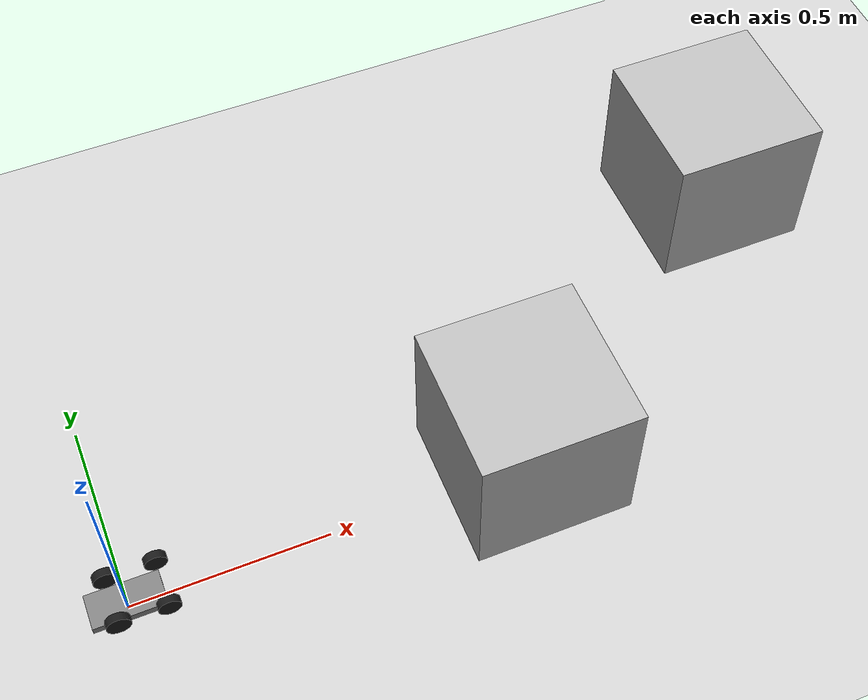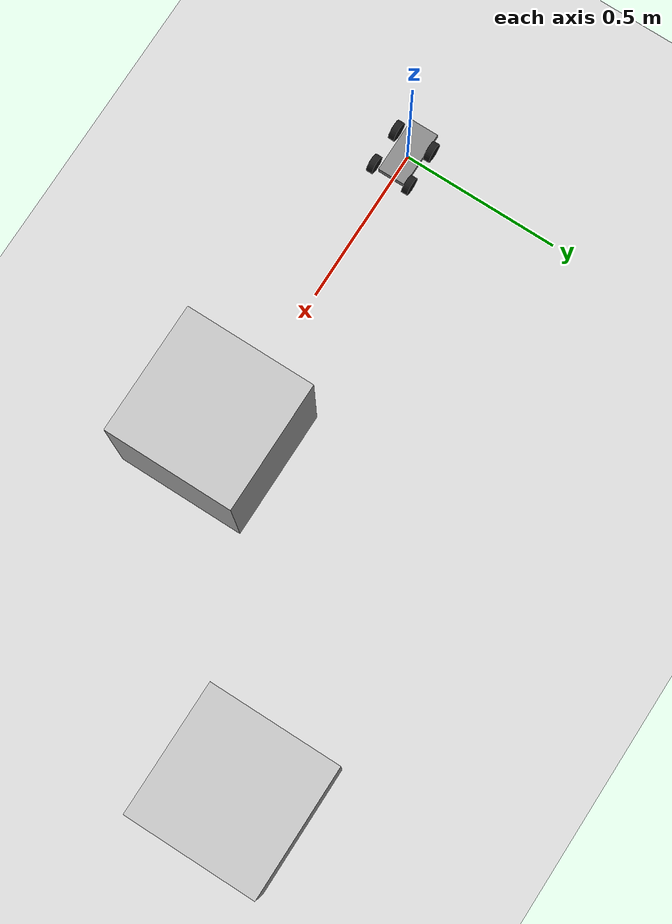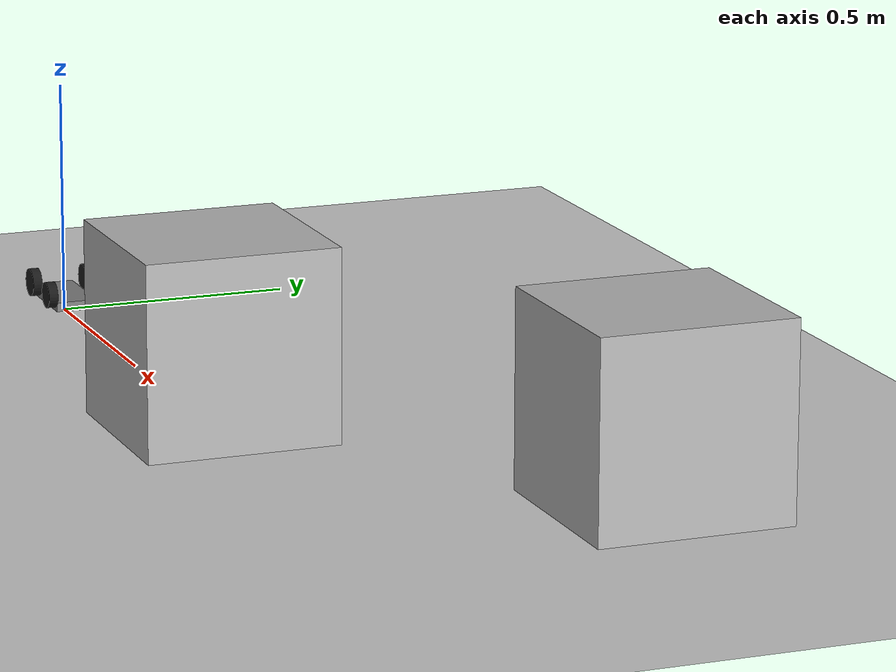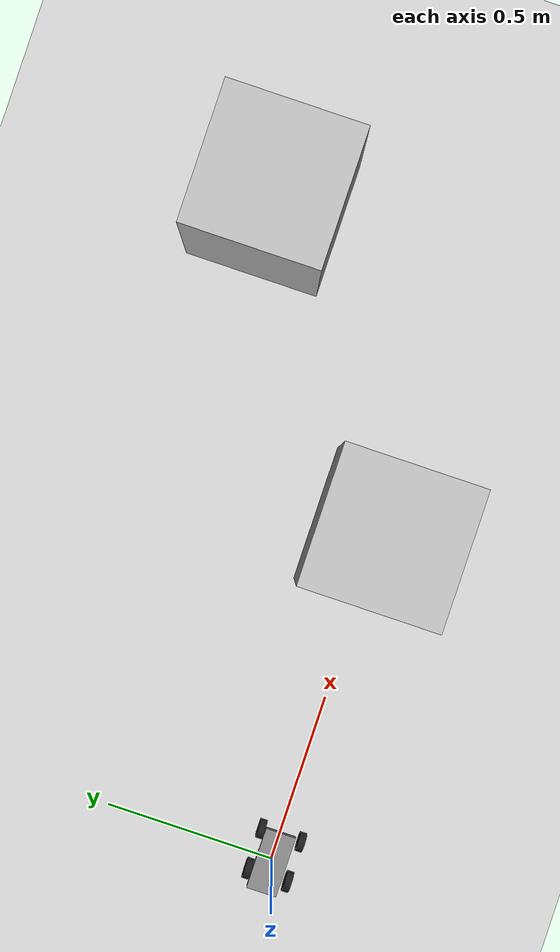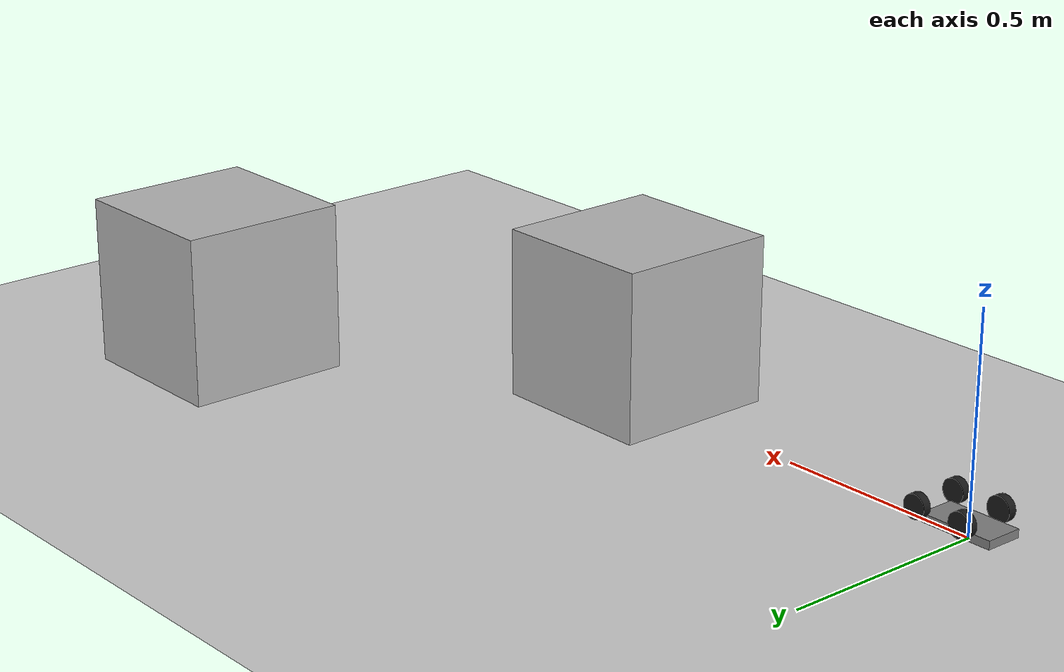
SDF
<sdf version='1.10'>
  <world name='factory'>
    <gravity>0 0 -9.8100000000000005</gravity>
    <magnetic_field>5.5644999999999998e-06 2.2875799999999999e-05 -4.2388400000000002e-05</magnetic_field>
    <atmosphere type='adiabatic'/>
    <physics type='ode'>
      <max_step_size>0.001</max_step_size>
      <real_time_factor>1</real_time_factor>
      <real_time_update_rate>1000</real_time_update_rate>
    </physics>
    <scene>
      <ambient>0.400000006 0.400000006 0.400000006 1</ambient>
      <background>0.699999988 0.699999988 0.699999988 1</background>
      <shadows>true</shadows>
    </scene>
    <model name='ground'>
      <static>true</static>
      <link name='link'>
        <collision name='col'>
          <geometry>
            <plane>
              <normal>0 0 1</normal>
              <size>100 100</size>
            </plane>
          </geometry>
          <surface>
            <friction>
              <ode/>
            </friction>
            <bounce/>
            <contact/>
          </surface>
        </collision>
        <visual name='vis'>
          <geometry>
            <plane>
              <normal>0 0 1</normal>
              <size>100 100</size>
            </plane>
          </geometry>
          <material>
            <ambient>0.800000012 0.800000012 0.800000012 1</ambient>
            <diffuse>0.800000012 0.800000012 0.800000012 1</diffuse>
          </material>
        </visual>
        <pose>0 0 0 0 0 0</pose>
        <inertial>
          <pose>0 0 0 0 0 0</pose>
          <mass>1</mass>
          <inertia>
            <ixx>1</ixx>
            <ixy>0</ixy>
            <ixz>0</ixz>
            <iyy>1</iyy>
            <iyz>0</iyz>
            <izz>1</izz>
          </inertia>
        </inertial>
        <enable_wind>false</enable_wind>
      </link>
      <pose>0 0 0 0 0 0</pose>
      <self_collide>false</self_collide>
    </model>
    <model name='box_1'>
      <static>true</static>
      <pose>1 0 0.20000000000000001 0 0 0</pose>
      <link name='link'>
        <collision name='col'>
          <geometry>
            <box>
              <size>0.40000000000000002 0.40000000000000002 0.40000000000000002</size>
            </box>
          </geometry>
          <surface>
            <friction>
              <ode/>
            </friction>
            <bounce/>
            <contact/>
          </surface>
        </collision>
        <visual name='vis'>
          <geometry>
            <box>
              <size>0.40000000000000002 0.40000000000000002 0.40000000000000002</size>
            </box>
          </geometry>
        </visual>
        <pose>0 0 0 0 0 0</pose>
        <inertial>
          <pose>0 0 0 0 0 0</pose>
          <mass>1</mass>
          <inertia>
            <ixx>1</ixx>
            <ixy>0</ixy>
            <ixz>0</ixz>
            <iyy>1</iyy>
            <iyz>0</iyz>
            <izz>1</izz>
          </inertia>
        </inertial>
        <enable_wind>false</enable_wind>
      </link>
      <self_collide>false</self_collide>
    </model>
    <model name='box_2'>
      <static>true</static>
      <pose>1.8 0.59999999999999998 0.20000000000000001 0 0 0</pose>
      <link name='link'>
        <collision name='col'>
          <geometry>
            <box>
              <size>0.40000000000000002 0.40000000000000002 0.40000000000000002</size>
            </box>
          </geometry>
          <surface>
            <friction>
              <ode/>
            </friction>
            <bounce/>
            <contact/>
          </surface>
        </collision>
        <visual name='vis'>
          <geometry>
            <box>
              <size>0.40000000000000002 0.40000000000000002 0.40000000000000002</size>
            </box>
          </geometry>
        </visual>
        <pose>0 0 0 0 0 0</pose>
        <inertial>
          <pose>0 0 0 0 0 0</pose>
          <mass>1</mass>
          <inertia>
            <ixx>1</ixx>
            <ixy>0</ixy>
            <ixz>0</ixz>
            <iyy>1</iyy>
            <iyz>0</iyz>
            <izz>1</izz>
          </inertia>
        </inertial>
        <enable_wind>false</enable_wind>
      </link>
      <self_collide>false</self_collide>
    </model>
    <model name='picarx'>
      <pose>0 0 0.029999999999999999 0 0 0</pose>
      <static>false</static>
      <link name='base_link'>
        <pose>0 0 0 0 0 0</pose>
        <inertial>
          <mass>1</mass>
          <inertia>
            <ixx>0.00071000000000000002</ixx>
            <iyy>0.0027299999999999998</iyy>
            <izz>0.0033800000000000002</izz>
            <ixy>0</ixy>
            <ixz>0</ixz>
            <iyz>0</iyz>
          </inertia>
          <pose>0 0 0 0 0 0</pose>
        </inertial>
        <collision name='base_col'>
          <geometry>
            <box>
              <size>0.17999999999999999 0.089999999999999997 0.02</size>
            </box>
          </geometry>
          <surface>
            <friction>
              <ode>
                <mu>1</mu>
                <mu2>1</mu2>
              </ode>
            </friction>
            <bounce/>
            <contact/>
          </surface>
        </collision>
        <visual name='base_vis'>
          <geometry>
            <box>
              <size>0.17999999999999999 0.089999999999999997 0.02</size>
            </box>
          </geometry>
          <material>
            <ambient>0.5 0.5 0.5 1</ambient>
          </material>
        </visual>
        <enable_wind>false</enable_wind>
      </link>
      <link name='left_wheel'>
        <pose>-0.029999999999999999 0.059999999999999998 0.029999999999999999 1.5708000000000006 0 0</pose>
        <inertial>
          <mass>0.050000000000000003</mass>
          <inertia>
            <ixx>5.0000000000000002e-05</ixx>
            <iyy>2.0000000000000002e-05</iyy>
            <izz>5.0000000000000002e-05</izz>
            <ixy>0</ixy>
            <ixz>0</ixz>
            <iyz>0</iyz>
          </inertia>
          <pose>0 0 0 0 0 0</pose>
        </inertial>
        <collision name='col'>
          <geometry>
            <cylinder>
              <radius>0.029999999999999999</radius>
              <length>0.02</length>
            </cylinder>
          </geometry>
          <surface>
            <friction>
              <ode>
                <mu>1.5</mu>
                <mu2>1.5</mu2>
              </ode>
            </friction>
            <bounce/>
            <contact/>
          </surface>
        </collision>
        <visual name='vis'>
          <geometry>
            <cylinder>
              <radius>0.029999999999999999</radius>
              <length>0.02</length>
            </cylinder>
          </geometry>
          <material>
            <ambient>0.100000001 0.100000001 0.100000001 1</ambient>
          </material>
        </visual>
        <enable_wind>false</enable_wind>
      </link>
      <link name='right_wheel'>
        <pose>-0.029999999999999999 -0.059999999999999998 0.029999999999999999 1.5708000000000006 0 0</pose>
        <inertial>
          <mass>0.050000000000000003</mass>
          <inertia>
            <ixx>5.0000000000000002e-05</ixx>
            <iyy>2.0000000000000002e-05</iyy>
            <izz>5.0000000000000002e-05</izz>
            <ixy>0</ixy>
            <ixz>0</ixz>
            <iyz>0</iyz>
          </inertia>
          <pose>0 0 0 0 0 0</pose>
        </inertial>
        <collision name='col'>
          <geometry>
            <cylinder>
              <radius>0.029999999999999999</radius>
              <length>0.02</length>
            </cylinder>
          </geometry>
          <surface>
            <friction>
              <ode>
                <mu>1.5</mu>
                <mu2>1.5</mu2>
              </ode>
            </friction>
            <bounce/>
            <contact/>
          </surface>
        </collision>
        <visual name='vis'>
          <geometry>
            <cylinder>
              <radius>0.029999999999999999</radius>
              <length>0.02</length>
            </cylinder>
          </geometry>
          <material>
            <ambient>0.100000001 0.100000001 0.100000001 1</ambient>
          </material>
        </visual>
        <enable_wind>false</enable_wind>
      </link>
      <link name='front_left_wheel'>
        <pose>0.089999999999999997 0.059999999999999998 0.029999999999999999 1.5708000000000006 0 0</pose>
        <visual name='vis'>
          <geometry>
            <cylinder>
              <radius>0.028000000000000001</radius>
              <length>0.02</length>
            </cylinder>
          </geometry>
          <material>
            <ambient>0.100000001 0.100000001 0.100000001 1</ambient>
          </material>
        </visual>
        <inertial>
          <pose>0 0 0 0 0 0</pose>
          <mass>1</mass>
          <inertia>
            <ixx>1</ixx>
            <ixy>0</ixy>
            <ixz>0</ixz>
            <iyy>1</iyy>
            <iyz>0</iyz>
            <izz>1</izz>
          </inertia>
        </inertial>
        <enable_wind>false</enable_wind>
      </link>
      <joint name='front_left_fixed' type='fixed'>
        <parent>base_link</parent>
        <child>front_left_wheel</child>
        <pose>0 3.4694469519536142e-18 -1.3877787807814457e-17 0 0 0</pose>
      </joint>
      <link name='front_right_wheel'>
        <pose>0.089999999999999997 -0.059999999999999998 0.029999999999999999 1.5708000000000006 0 0</pose>
        <visual name='vis'>
          <geometry>
            <cylinder>
              <radius>0.028000000000000001</radius>
              <length>0.02</length>
            </cylinder>
          </geometry>
          <material>
            <ambient>0.100000001 0.100000001 0.100000001 1</ambient>
          </material>
        </visual>
        <inertial>
          <pose>0 0 0 0 0 0</pose>
          <mass>1</mass>
          <inertia>
            <ixx>1</ixx>
            <ixy>0</ixy>
            <ixz>0</ixz>
            <iyy>1</iyy>
            <iyz>0</iyz>
            <izz>1</izz>
          </inertia>
        </inertial>
        <enable_wind>false</enable_wind>
      </link>
      <joint name='front_right_fixed' type='fixed'>
        <parent>base_link</parent>
        <child>front_right_wheel</child>
        <pose>0 1.0408340855860843e-17 6.9388939039072284e-18 0 0 0</pose>
      </joint>
      <joint name='left_wheel_joint' type='revolute'>
        <parent>base_link</parent>
        <child>left_wheel</child>
        <axis>
          <xyz>0 1 0</xyz>
          <limit>
            <lower>-10000000000000000</lower>
            <upper>10000000000000000</upper>
            <effort>inf</effort>
            <velocity>inf</velocity>
            <stiffness>100000000</stiffness>
            <dissipation>1</dissipation>
          </limit>
          <dynamics>
            <spring_reference>0</spring_reference>
            <spring_stiffness>0</spring_stiffness>
            <damping>0.20000000000000001</damping>
            <friction>0</friction>
          </dynamics>
        </axis>
        <pose>0 3.4694469519536142e-18 -1.3877787807814457e-17 0 0 0</pose>
      </joint>
      <joint name='right_wheel_joint' type='revolute'>
        <parent>base_link</parent>
        <child>right_wheel</child>
        <axis>
          <xyz>0 1 0</xyz>
          <limit>
            <lower>-10000000000000000</lower>
            <upper>10000000000000000</upper>
            <effort>inf</effort>
            <velocity>inf</velocity>
            <stiffness>100000000</stiffness>
            <dissipation>1</dissipation>
          </limit>
          <dynamics>
            <spring_reference>0</spring_reference>
            <spring_stiffness>0</spring_stiffness>
            <damping>0.20000000000000001</damping>
            <friction>0</friction>
          </dynamics>
        </axis>
        <pose>0 1.0408340855860843e-17 6.9388939039072284e-18 0 0 0</pose>
      </joint>
      <link name='sonar_link'>
        <pose>0.10000000000000001 0 0.050000000000000003 0 0 0</pose>
        <sensor name='front_scan' type='ray'>
          <update_rate>15</update_rate>
          <ray>
            <scan>
              <horizontal>
                <samples>61</samples>
                <resolution>1</resolution>
                <min_angle>-0.45000000000000001</min_angle>
                <max_angle>0.45000000000000001</max_angle>
              </horizontal>
            </scan>
            <range>
              <min>0.029999999999999999</min>
              <max>2.5</max>
              <resolution>0.01</resolution>
            </range>
          </ray>
          <topic>/picarx/front_scan</topic>
        </sensor>
        <inertial>
          <pose>0 0 0 0 0 0</pose>
          <mass>1</mass>
          <inertia>
            <ixx>1</ixx>
            <ixy>0</ixy>
            <ixz>0</ixz>
            <iyy>1</iyy>
            <iyz>0</iyz>
            <izz>1</izz>
          </inertia>
        </inertial>
        <enable_wind>false</enable_wind>
      </link>
      <joint name='sonar_fixed' type='fixed'>
        <parent>base_link</parent>
        <child>sonar_link</child>
        <pose>0 0 0 0 0 0</pose>
      </joint>
      <link name='camera_link'>
        <pose>0.080000000000000002 0 0.080000000000000002 0 0 0</pose>
        <sensor name='front_camera' type='camera'>
          <pose>0 0 0 0 0 0</pose>
          <topic>/picarx/camera</topic>
          <update_rate>15</update_rate>
          <enable_metrics>false</enable_metrics>
          <camera name='__default__'>
            <pose>0 0 0 0 0 0</pose>
            <horizontal_fov>1.0469999999999999</horizontal_fov>
            <image>
              <width>160</width>
              <height>120</height>
              <format>RGB_INT8</format>
              <anti_aliasing>4</anti_aliasing>
            </image>
            <camera_info_topic>__default__</camera_info_topic>
            <trigger_topic></trigger_topic>
            <triggered>false</triggered>
            <clip>
              <near>0.02</near>
              <far>10</far>
            </clip>
            <save enabled='false'>
              <path>__default__</path>
            </save>
            <visibility_mask>4294967295</visibility_mask>
            <noise>
              <type>none</type>
              <mean>0</mean>
              <stddev>0</stddev>
            </noise>
            <distortion>
              <k1>0</k1>
              <k2>0</k2>
              <k3>0</k3>
              <p1>0</p1>
              <p2>0</p2>
              <center>0.5 0.5</center>
            </distortion>
            <lens>
              <type>stereographic</type>
              <scale_to_hfov>true</scale_to_hfov>
              <cutoff_angle>1.5707963267948966</cutoff_angle>
              <env_texture_size>256</env_texture_size>
            </lens>
            <optical_frame_id></optical_frame_id>
          </camera>
        </sensor>
        <inertial>
          <pose>0 0 0 0 0 0</pose>
          <mass>1</mass>
          <inertia>
            <ixx>1</ixx>
            <ixy>0</ixy>
            <ixz>0</ixz>
            <iyy>1</iyy>
            <iyz>0</iyz>
            <izz>1</izz>
          </inertia>
        </inertial>
        <enable_wind>false</enable_wind>
      </link>
      <joint name='camera_fixed' type='fixed'>
        <parent>base_link</parent>
        <child>camera_link</child>
        <pose>0 0 0 0 0 0</pose>
      </joint>
      <plugin name='diff_drive' filename='gz-sim-diff-drive-system'>
        <left_joint>left_wheel_joint</left_joint>
        <right_joint>right_wheel_joint</right_joint>
        <wheel_separation>0.12</wheel_separation>
        <wheel_radius>0.03</wheel_radius>
        <topic>/picarx/cmd_vel</topic>
        <odom_topic>/picarx/odometry</odom_topic>
        <odom_frame>odom</odom_frame>
        <robot_base_frame>base_link</robot_base_frame>
        <max_linear_speed>0.5</max_linear_speed>
        <max_angular_speed>2.0</max_angular_speed>
      </plugin>
      <self_collide>false</self_collide>
    </model>
    <light name='sun' type='directional'>
      <pose>0 0 0 0 0 0</pose>
      <cast_shadows>true</cast_shadows>
      <intensity>1</intensity>
      <direction>-0.5 0.5 -1</direction>
      <diffuse>1 1 1 1</diffuse>
      <specular>0.100000001 0.100000001 0.100000001 1</specular>
      <attenuation>
        <range>10</range>
        <linear>1</linear>
        <constant>1</constant>
        <quadratic>0</quadratic>
      </attenuation>
      <spot>
        <inner_angle>0</inner_angle>
        <outer_angle>0</outer_angle>
        <falloff>0</falloff>
      </spot>
    </light>
  </world>
</sdf>
